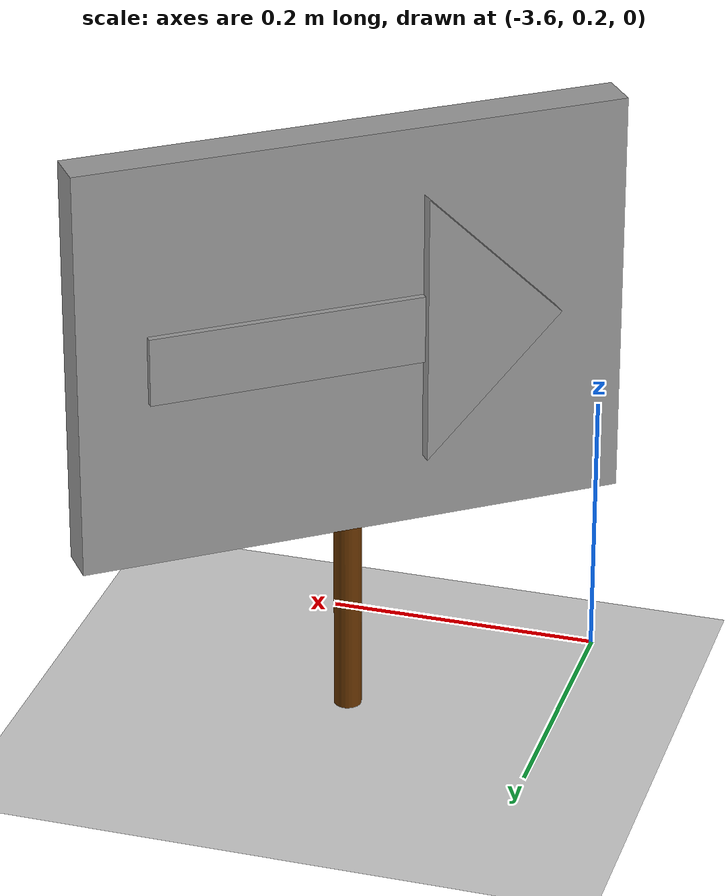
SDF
<sdf version="1.7">
 <world name="default">
  <model name="ground_plane">
   <static>1</static>
   <link name="link">
    <collision name="collision">
     <geometry><plane><normal>0 0 1</normal><size>100 100</size></plane></geometry>
     <surface>
      <contact><collide_bitmask>65535</collide_bitmask></contact>
      <friction><ode><mu>100</mu><mu2>50</mu2></ode></friction>
     </surface>
    </collision>
    <visual name="visual">
     <cast_shadows>0</cast_shadows>
     <geometry><plane><normal>0 0 1</normal><size>100 100</size></plane></geometry>
     <material>
      <script><uri>file://media/materials/scripts/gazebo.material</uri><name>Gazebo/Grey</name></script>
     </material>
    </visual>
   </link>
  </model>
  <model name="arrow_board_6">
   <link name="link_0">
    <inertial>
     <mass>1</mass>
     <inertia><ixx>0.145833</ixx><ixy>0</ixy><ixz>0</ixz><iyy>0.145833</iyy><iyz>0</iyz><izz>0.125</izz></inertia>
    </inertial>
    <pose>-0.01675 0.00625 0.1625 0 -0 0</pose>
    <gravity>0</gravity>
    <visual name="visual">
     <geometry><cylinder><radius>0.01</radius><length>0.3</length></cylinder></geometry>
     <material>
      <lighting>1</lighting>
      <script><uri>file://media/materials/scripts/gazebo.material</uri><name>Gazebo/Grey</name></script>
      <shader type="pixel"><normal_map>__default__</normal_map></shader>
      <ambient>0.4 0.2 0 1</ambient>
      <diffuse>0.4 0.2 0 1</diffuse>
      <specular>0 0 0 1</specular>
      <emissive>0 0 0 1</emissive>
     </material>
    </visual>
    <collision name="collision">
     <geometry><cylinder><radius>0.01</radius><length>0.3</length></cylinder></geometry>
     <surface>
      <friction>
       <ode><mu>1</mu><mu2>1</mu2><fdir1>0 0 0</fdir1><slip1>0</slip1><slip2>0</slip2></ode>
       <torsional>
        <coefficient>1</coefficient>
        <patch_radius>0</patch_radius>
        <surface_radius>0</surface_radius>
        <use_patch_radius>1</use_patch_radius>
        <ode><slip>0</slip></ode>
       </torsional>
      </friction>
      <bounce><restitution_coefficient>0</restitution_coefficient><threshold>1e+06</threshold></bounce>
      <contact>
       <collide_without_contact>0</collide_without_contact>
       <collide_without_contact_bitmask>1</collide_without_contact_bitmask>
       <collide_bitmask>1</collide_bitmask>
       <ode>
        <soft_cfm>0</soft_cfm>
        <soft_erp>0.2</soft_erp>
        <kp>1e+13</kp>
        <kd>1</kd>
        <max_vel>0.01</max_vel>
        <min_depth>0</min_depth>
       </ode>
       <bullet>
        <split_impulse>1</split_impulse>
        <split_impulse_penetration_threshold>-0.01</split_impulse_penetration_threshold>
        <soft_cfm>0</soft_cfm>
        <soft_erp>0.2</soft_erp>
        <kp>1e+13</kp>
        <kd>1</kd>
       </bullet>
      </contact>
     </surface>
    </collision>
   </link>
   <link name="link_1">
    <inertial>
     <mass>1</mass>
     <inertia>
      <ixx>0.166667</ixx>
      <ixy>0</ixy>
      <ixz>0</ixz>
      <iyy>0.166667</iyy>
      <iyz>0</iyz>
      <izz>0.166667</izz>
     </inertia>
    </inertial>
    <pose>-0.01675 0.00625 0.3125 0 -0 0</pose>
    <gravity>0</gravity>
    <visual name="visual">
     <geometry><box><size>0.4 0.03 0.3</size></box></geometry>
     <material>
      <lighting>1</lighting>
      <script><uri>file://media/materials/scripts/gazebo.material</uri><name>Gazebo/Grey</name></script>
      <shader type="pixel"><normal_map>__default__</normal_map></shader>
      <ambient>1 1 1 1</ambient>
      <diffuse>1 1 1 1</diffuse>
      <specular>1 1 1 1</specular>
      <emissive>0 0 0 1</emissive>
     </material>
    </visual>
    <collision name="collision">
     <geometry><box><size>0.4 0.03 0.3</size></box></geometry>
     <surface>
      <friction>
       <ode><mu>1</mu><mu2>1</mu2><fdir1>0 0 0</fdir1><slip1>0</slip1><slip2>0</slip2></ode>
       <torsional>
        <coefficient>1</coefficient>
        <patch_radius>0</patch_radius>
        <surface_radius>0</surface_radius>
        <use_patch_radius>1</use_patch_radius>
        <ode><slip>0</slip></ode>
       </torsional>
      </friction>
      <bounce><restitution_coefficient>0</restitution_coefficient><threshold>1e+06</threshold></bounce>
      <contact>
       <collide_without_contact>0</collide_without_contact>
       <collide_without_contact_bitmask>1</collide_without_contact_bitmask>
       <collide_bitmask>1</collide_bitmask>
       <ode>
        <soft_cfm>0</soft_cfm>
        <soft_erp>0.2</soft_erp>
        <kp>1e+13</kp>
        <kd>1</kd>
        <max_vel>0.01</max_vel>
        <min_depth>0</min_depth>
       </ode>
       <bullet>
        <split_impulse>1</split_impulse>
        <split_impulse_penetration_threshold>-0.01</split_impulse_penetration_threshold>
        <soft_cfm>0</soft_cfm>
        <soft_erp>0.2</soft_erp>
        <kp>1e+13</kp>
        <kd>1</kd>
       </bullet>
      </contact>
     </surface>
    </collision>
   </link>
   <link name="link_2">
    <inertial>
     <mass>1</mass>
     <inertia>
      <ixx>0.166667</ixx>
      <ixy>0</ixy>
      <ixz>0</ixz>
      <iyy>0.166667</iyy>
      <iyz>0</iyz>
      <izz>0.166667</izz>
     </inertia>
    </inertial>
    <pose>-0.06675 0.00625 0.3125 0 -0 0</pose>
    <gravity>0</gravity>
    <visual name="visual">
     <geometry><box><size>0.2 0.04 0.05</size></box></geometry>
     <material>
      <lighting>1</lighting>
      <script><uri>file://media/materials/scripts/gazebo.material</uri><name>Gazebo/Grey</name></script>
      <shader type="pixel"><normal_map>__default__</normal_map></shader>
      <ambient>0 0 0 1</ambient>
      <diffuse>0 0 0 1</diffuse>
      <specular>0 0 0 1</specular>
      <emissive>0 0 0 1</emissive>
     </material>
    </visual>
    <collision name="collision">
     <geometry><box><size>0.2 0.04 0.05</size></box></geometry>
     <surface>
      <friction>
       <ode><mu>1</mu><mu2>1</mu2><fdir1>0 0 0</fdir1><slip1>0</slip1><slip2>0</slip2></ode>
       <torsional>
        <coefficient>1</coefficient>
        <patch_radius>0</patch_radius>
        <surface_radius>0</surface_radius>
        <use_patch_radius>1</use_patch_radius>
        <ode><slip>0</slip></ode>
       </torsional>
      </friction>
      <bounce><restitution_coefficient>0</restitution_coefficient><threshold>1e+06</threshold></bounce>
      <contact>
       <collide_without_contact>0</collide_without_contact>
       <collide_without_contact_bitmask>1</collide_without_contact_bitmask>
       <collide_bitmask>1</collide_bitmask>
       <ode>
        <soft_cfm>0</soft_cfm>
        <soft_erp>0.2</soft_erp>
        <kp>1e+13</kp>
        <kd>1</kd>
        <max_vel>0.01</max_vel>
        <min_depth>0</min_depth>
       </ode>
       <bullet>
        <split_impulse>1</split_impulse>
        <split_impulse_penetration_threshold>-0.01</split_impulse_penetration_threshold>
        <soft_cfm>0</soft_cfm>
        <soft_erp>0.2</soft_erp>
        <kp>1e+13</kp>
        <kd>1</kd>
       </bullet>
      </contact>
     </surface>
    </collision>
   </link>
   <link name="link_4">
    <inertial>
     <mass>1</mass>
     <inertia>
      <ixx>0.166667</ixx>
      <ixy>0</ixy>
      <ixz>0</ixz>
      <iyy>0.166667</iyy>
      <iyz>0</iyz>
      <izz>0.166667</izz>
     </inertia>
    </inertial>
    <pose>0.033583 -0.01875 0.2125 0 -0 0</pose>
    <gravity>0</gravity>
    <visual name="visual">
     <geometry>
      <mesh>
       <uri>/home/ritesh/mobrob_ws/src/mobrob/meshes/arrow_head.stl</uri>
       <scale>0.001 0.001 0.001</scale>
      </mesh>
     </geometry>
     <material>
      <lighting>1</lighting>
      <script><uri>file://media/materials/scripts/gazebo.material</uri><name>Gazebo/Grey</name></script>
      <shader type="pixel"><normal_map>__default__</normal_map></shader>
      <ambient>0 0 0 1</ambient>
      <diffuse>0 0 0 1</diffuse>
      <specular>0 0 0 1</specular>
      <emissive>0 0 0 1</emissive>
     </material>
    </visual>
    <collision name="collision">
     <geometry>
      <mesh>
       <uri>/home/ritesh/mobrob_ws/src/mobrob/meshes/arrow_head.stl</uri>
       <scale>0.001 0.001 0.001</scale>
      </mesh>
     </geometry>
     <surface>
      <friction>
       <ode><mu>1</mu><mu2>1</mu2><fdir1>0 0 0</fdir1><slip1>0</slip1><slip2>0</slip2></ode>
       <torsional>
        <coefficient>1</coefficient>
        <patch_radius>0</patch_radius>
        <surface_radius>0</surface_radius>
        <use_patch_radius>1</use_patch_radius>
        <ode><slip>0</slip></ode>
       </torsional>
      </friction>
      <bounce><restitution_coefficient>0</restitution_coefficient><threshold>1e+06</threshold></bounce>
      <contact>
       <collide_without_contact>0</collide_without_contact>
       <collide_without_contact_bitmask>1</collide_without_contact_bitmask>
       <collide_bitmask>1</collide_bitmask>
       <ode>
        <soft_cfm>0</soft_cfm>
        <soft_erp>0.2</soft_erp>
        <kp>1e+13</kp>
        <kd>1</kd>
        <max_vel>0.01</max_vel>
        <min_depth>0</min_depth>
       </ode>
       <bullet>
        <split_impulse>1</split_impulse>
        <split_impulse_penetration_threshold>-0.01</split_impulse_penetration_threshold>
        <soft_cfm>0</soft_cfm>
        <soft_erp>0.2</soft_erp>
        <kp>1e+13</kp>
        <kd>1</kd>
       </bullet>
      </contact>
     </surface>
    </collision>
   </link>
   <static>0</static>
   <pose>-3.47338 0.349771 0 0 0 -2.49795</pose>
  </model>
 </world>
</sdf>
